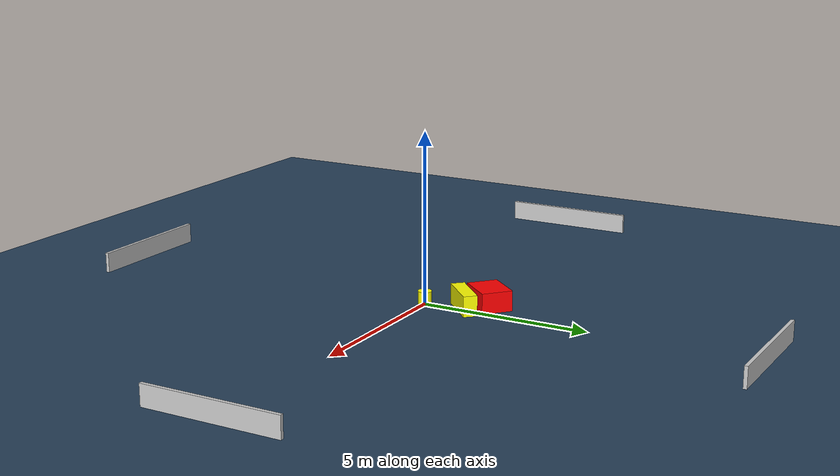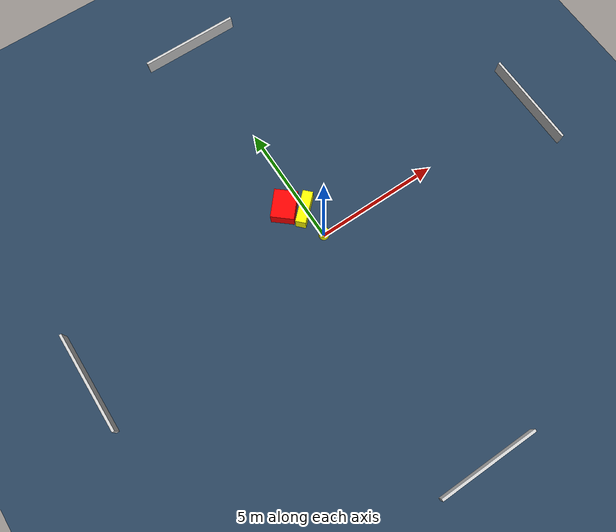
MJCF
<?xml version="1.0" ?>
<mujoco model="generated_environment">
  <option timestep="0.01" integrator="RK4" cone="elliptic"/>
  <default>
    <geom density="1"/>
  </default>
  <asset>
    <texture builtin="gradient" height="3072" name="skybox" rgb1="0.3 0.5 0.7" rgb2="0 0 0" type="skybox" width="512"/>
    <texture builtin="checker" height="300" name="groundplane" rgb1="0.2 0.3 0.4" rgb2="0.1 0.2 0.3" type="2d" width="300"/>
    <material name="groundplane" reflectance="0.2" texrepeat="5 5" texture="groundplane"/>
  </asset>
  <worldbody>
    <light dir="0 0 -1" directional="true" pos="0 0 1.5"/>
    <geom condim="3" friction="0.5 0.005 0.001" material="groundplane" name="floor" pos="0 0 0" size="0 0 0.05" type="plane"/>
    <body name="walls">
      <geom name="wall_1" condim="4" pos="-10.0 0.0 0.3" rgba="0.800000011920929 0.800000011920929 0.800000011920929 1.0" size="0.05 2.0 0.3" type="box"/>
      <geom name="wall_2" condim="4" pos="10.0 0.0 0.3" rgba="0.800000011920929 0.800000011920929 0.800000011920929 1.0" size="0.05 2.0 0.3" type="box"/>
      <geom name="wall_3" condim="4" pos="0.0 -10.0 0.3" rgba="0.800000011920929 0.800000011920929 0.800000011920929 1.0" size="2.0 0.05 0.3" type="box"/>
      <geom name="wall_4" condim="4" pos="0.0 10.0 0.3" rgba="0.800000011920929 0.800000011920929 0.800000011920929 1.0" size="2.0 0.05 0.3" type="box"/>
    </body>
    <body name="robot">
      <joint name="joint_x" type="slide" pos="0 0 0" axis="1 0 0"/>
      <joint name="joint_y" type="slide" pos="0 0 0" axis="0 1 0"/>
      <geom name="robot" type="cylinder" pos="0.0 0.0 0.2" size="0.2 0.2 0.0" mass="5.0" friction="1.0 0.005 0.0001" condim="4" rgba="1.0 1.0 0.0 1.0"/>
    </body>
    <body name="obstacle_1_movable">
      <geom name="obstacle_1_movable" condim="4" pos="-0.08519536137372408 1.209761872165433 0.3" euler="0 0 313.75191462921515" friction="0.0 0.005 0.001" rgba="1.0 1.0 0.0 1.0" size="0.20316569591799133 0.6490870253991896 0.3" type="box" mass="0.1"/>
      <joint type="free"/>
    </body>
    <body name="obstacle_2_static">
      <geom name="obstacle_2_static" condim="4" pos="-0.6665818527898216 1.7210329738933372 0.3" euler="0 0 229.2663957644259" friction="0.0 0.005 0.001" rgba="1.0 0.0 0.0 1.0" size="0.5721002204635471 0.45723385391961474 0.3" type="box"/>
    </body>
  </worldbody>
  <actuator>
    <motor name="actuator_x" joint="joint_x" gear="1" ctrlrange="-1 1"/>
    <motor name="actuator_y" joint="joint_y" gear="1" ctrlrange="-1 1"/>
  </actuator>
</mujoco>
